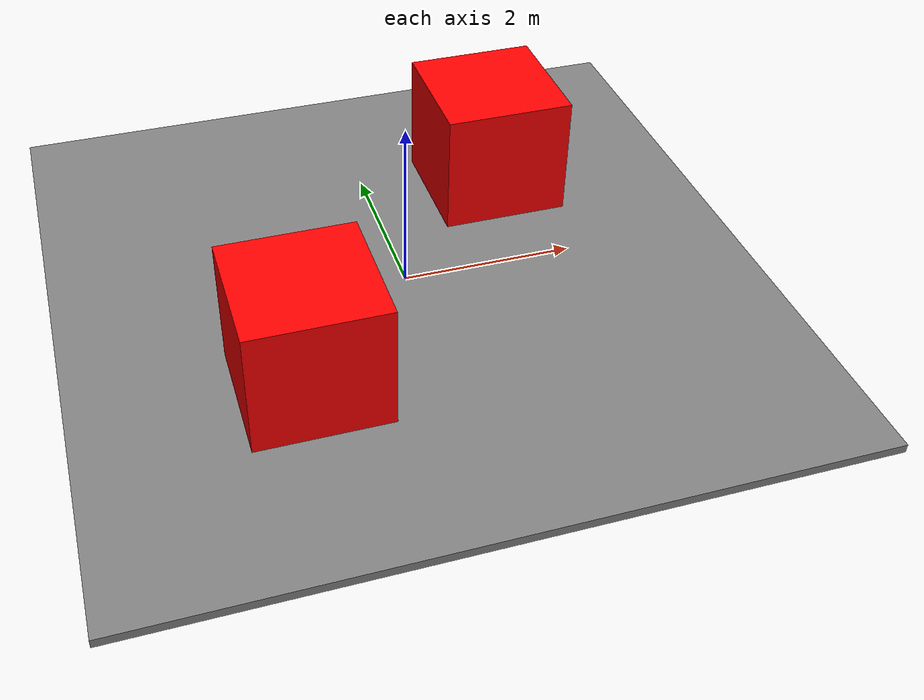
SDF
<?xml version="1.0" ?>
<sdf version="1.6">
  <world name="indoor_environment3">
    <plugin name='ros_interface_plugin' filename='librotors_gazebo_ros_interface_plugin.so'/>
    <physics type='ode'>
      <gravity>0 0 -9.8</gravity>
      <max_step_size>0.001</max_step_size>
      <max_contacts>20</max_contacts>
      <real_time_factor>1</real_time_factor>
      <real_time_update_rate>1000</real_time_update_rate>
    </physics>

    <light name='sun' type='directional'>
      <cast_shadows>1</cast_shadows>
      <pose>0 0 10 0 -0 0</pose>
      <diffuse>0.8 0.8 0.8 1</diffuse>
      <specular>0.2 0.2 0.2 1</specular>
      <attenuation>
        <range>1000</range>
        <constant>0.9</constant>
        <linear>0.01</linear>
        <quadratic>0.001</quadratic>
      </attenuation>
      <direction>-0.5 0.1 -0.9</direction>
      <spot>
        <inner_angle>0</inner_angle>
        <outer_angle>0</outer_angle>
        <falloff>0</falloff>
      </spot>
    </light>

    <scene>
      <ambient>0.4 0.4 0.4 1</ambient>
      <background>0.7 0.7 0.7 1</background>
      <shadows>1</shadows>
    </scene>

    <spherical_coordinates>
      <surface_model>EARTH_WGS84</surface_model>
      <latitude_deg>0</latitude_deg>
      <longitude_deg>0</longitude_deg>
      <elevation>0</elevation>
      <heading_deg>0</heading_deg>
    </spherical_coordinates>

    <!-- 地面：8m x 8m -->
    <model name="floor">
      <static>true</static>
      <link name="floor_link">
        <collision name="collision">
          <geometry>
            <box>
              <size>8 8 0.1</size>
            </box>
          </geometry>
        </collision>
        <visual name="visual">
          <geometry>
            <box>
              <size>8 8 0.1</size>
            </box>
          </geometry>
          <material>
            <ambient>0.5 0.5 0.5 1</ambient>
            <diffuse>0.5 0.5 0.5 1</diffuse>
          </material>
        </visual>
      </link>
    </model>

    <!-- 第一象限障碍物 -->
    <model name="obstacle1">
      <pose>1.5 1.5 0.75 0 0 0</pose>
      <link name="link">
        <visual name="visual">
          <geometry>
            <box>
              <size>1.5 1.5 1.5</size>
            </box>
          </geometry>
          <material>
            <ambient>1 0 0 1</ambient>
            <diffuse>1 0 0 1</diffuse>
            <specular>0.5 0.5 0.5 1</specular>
            <emissive>0 0 0 1</emissive>
            <transparency>0</transparency>
          </material>
        </visual>
        <collision name="collision">
          <geometry>
            <box>
              <size>1.5 1.5 1.5</size>
            </box>
          </geometry>
        </collision>
      </link>
    </model>

    <!-- 第三象限障碍物 -->
    <model name="obstacle2">
      <pose>-1.5 -1.5 0.75 0 0 0</pose>
      <link name="link">
        <visual name="visual">
          <geometry>
            <box>
              <size>1.5 1.5 1.5</size>
            </box>
          </geometry>
          <material>
            <ambient>1 0 0 1</ambient>
            <diffuse>1 0 0 1</diffuse>
            <specular>0.5 0.5 0.5 1</specular>
            <emissive>0 0 0 1</emissive>
            <transparency>0</transparency>
          </material>
        </visual>
        <collision name="collision">
          <geometry>
            <box>
              <size>1.5 1.5 1.5</size>
            </box>
          </geometry>
        </collision>
      </link>
    </model>

  </world>
</sdf>
